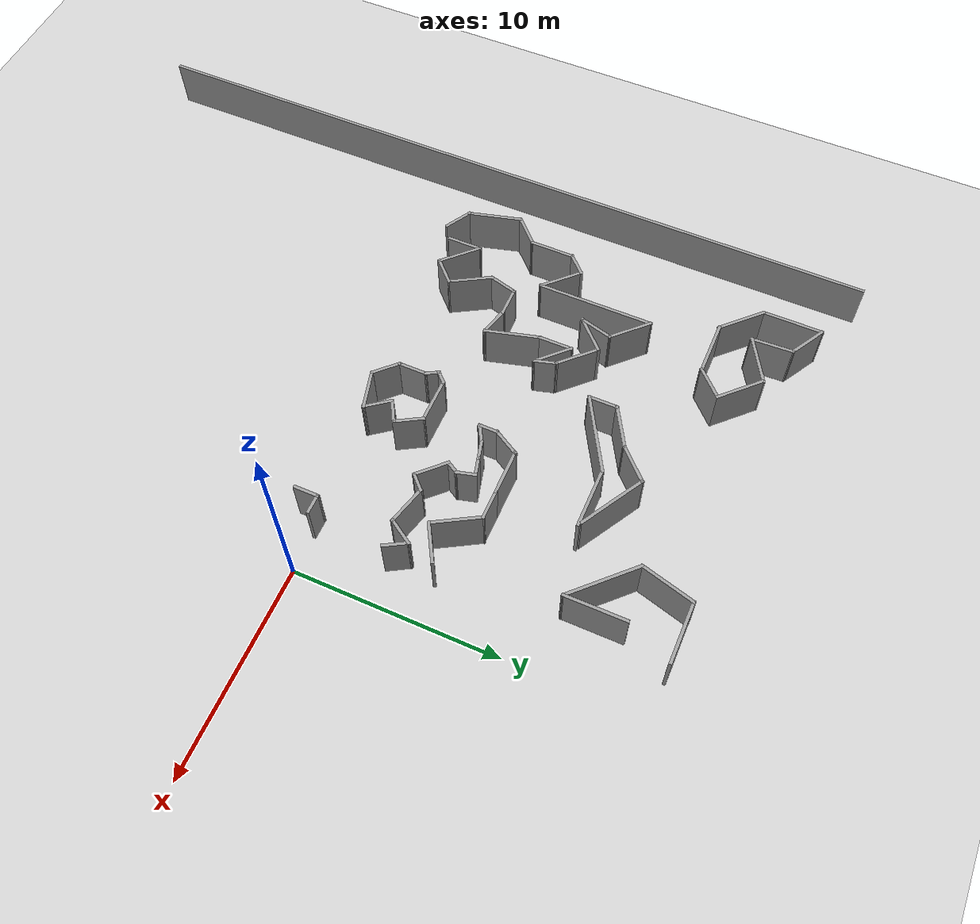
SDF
<sdf version="1.6">
 <world name="default">
  <model name="ground_plane">
   <static>1</static>
   <link name="link">
    <collision name="collision">
     <geometry><plane><normal>0 0 1</normal><size>100 100</size></plane></geometry>
     <surface><friction><ode><mu>100</mu><mu2>50</mu2></ode></friction></surface>
    </collision>
    <visual name="visual">
     <cast_shadows>0</cast_shadows>
     <geometry><plane><normal>0 0 1</normal><size>100 100</size></plane></geometry>
     <material>
      <script><uri>file://media/materials/scripts/gazebo.material</uri><name>Gazebo/Grey</name></script>
     </material>
    </visual>
   </link>
  </model>
  <model name="square_1">
   <pose>0.009703 -0.009719 0 0 -0 0</pose>
   <link name="Wall_105">
    <collision name="Wall_105_Collision">
     <geometry><box><size>3.5 0.15 2.5</size></box></geometry>
     <pose>0 0 1.25 0 -0 0</pose>
    </collision>
    <visual name="Wall_105_Visual">
     <pose>0 0 1.25 0 -0 0</pose>
     <geometry><box><size>3.5 0.15 2.5</size></box></geometry>
     <material>
      <script><uri>file://media/materials/scripts/gazebo.material</uri><name>Gazebo/Grey</name></script>
      <ambient>1 1 1 1</ambient>
     </material>
     <meta><layer>0</layer></meta>
    </visual>
    <pose>-7.60368 11.9241 0 0 -0 2.61799</pose>
   </link>
   <link name="Wall_106">
    <collision name="Wall_106_Collision">
     <geometry><box><size>2 0.15 2.5</size></box></geometry>
     <pose>0 0 1.25 0 -0 0</pose>
    </collision>
    <visual name="Wall_106_Visual">
     <pose>0 0 1.25 0 -0 0</pose>
     <geometry><box><size>2 0.15 2.5</size></box></geometry>
     <material>
      <script><uri>file://media/materials/scripts/gazebo.material</uri><name>Gazebo/Grey</name></script>
      <ambient>1 1 1 1</ambient>
     </material>
     <meta><layer>0</layer></meta>
    </visual>
    <pose>-9.70835 12.1075 0 0 0 -2.35619</pose>
   </link>
   <link name="Wall_107">
    <collision name="Wall_107_Collision">
     <geometry><box><size>2.25 0.15 2.5</size></box></geometry>
     <pose>0 0 1.25 0 -0 0</pose>
    </collision>
    <visual name="Wall_107_Visual">
     <pose>0 0 1.25 0 -0 0</pose>
     <geometry><box><size>2.25 0.15 2.5</size></box></geometry>
     <material>
      <script><uri>file://media/materials/scripts/gazebo.material</uri><name>Gazebo/Grey</name></script>
      <ambient>1 1 1 1</ambient>
     </material>
     <meta><layer>0</layer></meta>
    </visual>
    <pose>-11.2718 10.9285 0 0 0 -2.61799</pose>
   </link>
   <link name="Wall_108">
    <collision name="Wall_108_Collision">
     <geometry><box><size>1.5 0.15 2.5</size></box></geometry>
     <pose>0 0 1.25 0 -0 0</pose>
    </collision>
    <visual name="Wall_108_Visual">
     <pose>0 0 1.25 0 -0 0</pose>
     <geometry><box><size>1.5 0.15 2.5</size></box></geometry>
     <material>
      <script><uri>file://media/materials/scripts/gazebo.material</uri><name>Gazebo/Grey</name></script>
      <ambient>1 1 1 1</ambient>
     </material>
     <meta><layer>0</layer></meta>
    </visual>
    <pose>-12.1811 9.72845 0 0 0 -1.5708</pose>
   </link>
   <link name="Wall_109">
    <collision name="Wall_109_Collision">
     <geometry><box><size>4 0.15 2.5</size></box></geometry>
     <pose>0 0 1.25 0 -0 0</pose>
    </collision>
    <visual name="Wall_109_Visual">
     <pose>0 0 1.25 0 -0 0</pose>
     <geometry><box><size>4 0.15 2.5</size></box></geometry>
     <material>
      <script><uri>file://media/materials/scripts/gazebo.material</uri><name>Gazebo/Grey</name></script>
      <ambient>1 1 1 1</ambient>
     </material>
     <meta><layer>0</layer></meta>
    </visual>
    <pose>-10.514 10.016 0 0 -0 0.523599</pose>
   </link>
   <link name="Wall_110">
    <collision name="Wall_110_Collision">
     <geometry><box><size>3 0.15 2.5</size></box></geometry>
     <pose>0 0 1.25 0 -0 0</pose>
    </collision>
    <visual name="Wall_110_Visual">
     <pose>0 0 1.25 0 -0 0</pose>
     <geometry><box><size>3 0.15 2.5</size></box></geometry>
     <material>
      <script><uri>file://media/materials/scripts/gazebo.material</uri><name>Gazebo/Grey</name></script>
      <ambient>1 1 1 1</ambient>
     </material>
     <meta><layer>0</layer></meta>
    </visual>
    <pose>-7.42188 10.9785 0 0 -0 0</pose>
   </link>
   <link name="Wall_182">
    <collision name="Wall_182_Collision">
     <geometry><box><size>2 0.15 2.5</size></box></geometry>
     <pose>0 0 1.25 0 -0 0</pose>
    </collision>
    <visual name="Wall_182_Visual">
     <pose>0 0 1.25 0 -0 0</pose>
     <geometry><box><size>2 0.15 2.5</size></box></geometry>
     <material>
      <script><uri>file://media/materials/scripts/gazebo.material</uri><name>Gazebo/Grey</name></script>
      <ambient>1 1 1 1</ambient>
     </material>
     <meta><layer>0</layer></meta>
    </visual>
    <pose>-13.6598 6.6534 0 0 -0 2.35619</pose>
   </link>
   <link name="Wall_183">
    <collision name="Wall_183_Collision">
     <geometry><box><size>1.75 0.15 2.5</size></box></geometry>
     <pose>0 0 1.25 0 -0 0</pose>
    </collision>
    <visual name="Wall_183_Visual">
     <pose>0 0 1.25 0 -0 0</pose>
     <geometry><box><size>1.75 0.15 2.5</size></box></geometry>
     <material>
      <script><uri>file://media/materials/scripts/gazebo.material</uri><name>Gazebo/Grey</name></script>
      <ambient>1 1 1 1</ambient>
     </material>
     <meta><layer>0</layer></meta>
    </visual>
    <pose>-14.3138 6.50747 0 0 0 -1.5708</pose>
   </link>
   <link name="Wall_184">
    <collision name="Wall_184_Collision">
     <geometry><box><size>2.75 0.15 2.5</size></box></geometry>
     <pose>0 0 1.25 0 -0 0</pose>
    </collision>
    <visual name="Wall_184_Visual">
     <pose>0 0 1.25 0 -0 0</pose>
     <geometry><box><size>2.75 0.15 2.5</size></box></geometry>
     <material>
      <script><uri>file://media/materials/scripts/gazebo.material</uri><name>Gazebo/Grey</name></script>
      <ambient>1 1 1 1</ambient>
     </material>
     <meta><layer>0</layer></meta>
    </visual>
    <pose>-13.9774 4.45177 0 0 0 -1.309</pose>
   </link>
   <link name="Wall_185">
    <collision name="Wall_185_Collision">
     <geometry><box><size>1.5 0.15 2.5</size></box></geometry>
     <pose>0 0 1.25 0 -0 0</pose>
    </collision>
    <visual name="Wall_185_Visual">
     <pose>0 0 1.25 0 -0 0</pose>
     <geometry><box><size>1.5 0.15 2.5</size></box></geometry>
     <material>
      <script><uri>file://media/materials/scripts/gazebo.material</uri><name>Gazebo/Grey</name></script>
      <ambient>1 1 1 1</ambient>
     </material>
     <meta><layer>0</layer></meta>
    </visual>
    <pose>-14.2929 3.37077 0 0 -0 2.87979</pose>
   </link>
   <link name="Wall_186">
    <collision name="Wall_186_Collision">
     <geometry><box><size>1.5 0.15 2.5</size></box></geometry>
     <pose>0 0 1.25 0 -0 0</pose>
    </collision>
    <visual name="Wall_186_Visual">
     <pose>0 0 1.25 0 -0 0</pose>
     <geometry><box><size>1.5 0.15 2.5</size></box></geometry>
     <material>
      <script><uri>file://media/materials/scripts/gazebo.material</uri><name>Gazebo/Grey</name></script>
      <ambient>1 1 1 1</ambient>
     </material>
     <meta><layer>0</layer></meta>
    </visual>
    <pose>-15.6199 3.54547 0 0 -0 3.14159</pose>
   </link>
   <link name="Wall_187">
    <collision name="Wall_187_Collision">
     <geometry><box><size>1.5 0.15 2.5</size></box></geometry>
     <pose>0 0 1.25 0 -0 0</pose>
    </collision>
    <visual name="Wall_187_Visual">
     <pose>0 0 1.25 0 -0 0</pose>
     <geometry><box><size>1.5 0.15 2.5</size></box></geometry>
     <material>
      <script><uri>file://media/materials/scripts/gazebo.material</uri><name>Gazebo/Grey</name></script>
      <ambient>1 1 1 1</ambient>
     </material>
     <meta><layer>0</layer></meta>
    </visual>
    <pose>-16.4696 2.89347 0 0 0 -1.8326</pose>
   </link>
   <link name="Wall_188">
    <collision name="Wall_188_Collision">
     <geometry><box><size>2.25 0.15 2.5</size></box></geometry>
     <pose>0 0 1.25 0 -0 0</pose>
    </collision>
    <visual name="Wall_188_Visual">
     <pose>0 0 1.25 0 -0 0</pose>
     <geometry><box><size>2.25 0.15 2.5</size></box></geometry>
     <material>
      <script><uri>file://media/materials/scripts/gazebo.material</uri><name>Gazebo/Grey</name></script>
      <ambient>1 1 1 1</ambient>
     </material>
     <meta><layer>0</layer></meta>
    </visual>
    <pose>-16.1193 1.33214 0 0 0 -1.0472</pose>
   </link>
   <link name="Wall_189">
    <collision name="Wall_189_Collision">
     <geometry><box><size>1.5 0.15 2.5</size></box></geometry>
     <pose>0 0 1.25 0 -0 0</pose>
    </collision>
    <visual name="Wall_189_Visual">
     <pose>0 0 1.25 0 -0 0</pose>
     <geometry><box><size>1.5 0.15 2.5</size></box></geometry>
     <material>
      <script><uri>file://media/materials/scripts/gazebo.material</uri><name>Gazebo/Grey</name></script>
      <ambient>1 1 1 1</ambient>
     </material>
     <meta><layer>0</layer></meta>
    </visual>
    <pose>-16.0716 -0.054481 0 0 0 -2.35619</pose>
   </link>
   <link name="Wall_190">
    <collision name="Wall_190_Collision">
     <geometry><box><size>2.25 0.15 2.5</size></box></geometry>
     <pose>0 0 1.25 0 -0 0</pose>
    </collision>
    <visual name="Wall_190_Visual">
     <pose>0 0 1.25 0 -0 0</pose>
     <geometry><box><size>2.25 0.15 2.5</size></box></geometry>
     <material>
      <script><uri>file://media/materials/scripts/gazebo.material</uri><name>Gazebo/Grey</name></script>
      <ambient>1 1 1 1</ambient>
     </material>
     <meta><layer>0</layer></meta>
    </visual>
    <pose>-17.2914 0.210684 0 0 -0 2.35619</pose>
   </link>
   <link name="Wall_191">
    <collision name="Wall_191_Collision">
     <geometry><box><size>1.75 0.15 2.5</size></box></geometry>
     <pose>0 0 1.25 0 -0 0</pose>
    </collision>
    <visual name="Wall_191_Visual">
     <pose>0 0 1.25 0 -0 0</pose>
     <geometry><box><size>1.75 0.15 2.5</size></box></geometry>
     <material>
      <script><uri>file://media/materials/scripts/gazebo.material</uri><name>Gazebo/Grey</name></script>
      <ambient>1 1 1 1</ambient>
     </material>
     <meta><layer>0</layer></meta>
    </visual>
    <pose>-18.0338 0.153146 0 0 0 -1.5708</pose>
   </link>
   <link name="Wall_194">
    <collision name="Wall_194_Collision">
     <geometry><box><size>1.5 0.15 2.5</size></box></geometry>
     <pose>0 0 1.25 0 -0 0</pose>
    </collision>
    <visual name="Wall_194_Visual">
     <pose>0 0 1.25 0 -0 0</pose>
     <geometry><box><size>1.5 0.15 2.5</size></box></geometry>
     <material>
      <script><uri>file://media/materials/scripts/gazebo.material</uri><name>Gazebo/Grey</name></script>
      <ambient>1 1 1 1</ambient>
     </material>
     <meta><layer>0</layer></meta>
    </visual>
    <pose>-19.2878 -0.774608 0 0 -0 2.61799</pose>
   </link>
   <link name="Wall_195">
    <collision name="Wall_195_Collision">
     <geometry><box><size>2.75 0.15 2.5</size></box></geometry>
     <pose>0 0 1.25 0 -0 0</pose>
    </collision>
    <visual name="Wall_195_Visual">
     <pose>0 0 1.25 0 -0 0</pose>
     <geometry><box><size>2.75 0.15 2.5</size></box></geometry>
     <material>
      <script><uri>file://media/materials/scripts/gazebo.material</uri><name>Gazebo/Grey</name></script>
      <ambient>1 1 1 1</ambient>
     </material>
     <meta><layer>0</layer></meta>
    </visual>
    <pose>-20.2089 0.818596 0 0 -0 1.8326</pose>
   </link>
   <link name="Wall_196">
    <collision name="Wall_196_Collision">
     <geometry><box><size>1.75 0.15 2.5</size></box></geometry>
     <pose>0 0 1.25 0 -0 0</pose>
    </collision>
    <visual name="Wall_196_Visual">
     <pose>0 0 1.25 0 -0 0</pose>
     <geometry><box><size>1.75 0.15 2.5</size></box></geometry>
     <material>
      <script><uri>file://media/materials/scripts/gazebo.material</uri><name>Gazebo/Grey</name></script>
      <ambient>1 1 1 1</ambient>
     </material>
     <meta><layer>0</layer></meta>
    </visual>
    <pose>-19.9796 2.63998 0 0 -0 0.785398</pose>
   </link>
   <link name="Wall_197">
    <collision name="Wall_197_Collision">
     <geometry><box><size>2.25 0.15 2.5</size></box></geometry>
     <pose>0 0 1.25 0 -0 0</pose>
    </collision>
    <visual name="Wall_197_Visual">
     <pose>0 0 1.25 0 -0 0</pose>
     <geometry><box><size>2.25 0.15 2.5</size></box></geometry>
     <material>
      <script><uri>file://media/materials/scripts/gazebo.material</uri><name>Gazebo/Grey</name></script>
      <ambient>1 1 1 1</ambient>
     </material>
     <meta><layer>0</layer></meta>
    </visual>
    <pose>-19.414 4.25567 0 0 -0 1.5708</pose>
   </link>
   <link name="Wall_198">
    <collision name="Wall_198_Collision">
     <geometry><box><size>1.25 0.15 2.5</size></box></geometry>
     <pose>0 0 1.25 0 -0 0</pose>
    </collision>
    <visual name="Wall_198_Visual">
     <pose>0 0 1.25 0 -0 0</pose>
     <geometry><box><size>1.25 0.15 2.5</size></box></geometry>
     <material>
      <script><uri>file://media/materials/scripts/gazebo.material</uri><name>Gazebo/Grey</name></script>
      <ambient>1 1 1 1</ambient>
     </material>
     <meta><layer>0</layer></meta>
    </visual>
    <pose>-19.025 5.69458 0 0 -0 0.785398</pose>
   </link>
   <link name="Wall_199">
    <collision name="Wall_199_Collision">
     <geometry><box><size>2.25 0.15 2.5</size></box></geometry>
     <pose>0 0 1.25 0 -0 0</pose>
    </collision>
    <visual name="Wall_199_Visual">
     <pose>0 0 1.25 0 -0 0</pose>
     <geometry><box><size>2.25 0.15 2.5</size></box></geometry>
     <material>
      <script><uri>file://media/materials/scripts/gazebo.material</uri><name>Gazebo/Grey</name></script>
      <ambient>1 1 1 1</ambient>
     </material>
     <meta><layer>0</layer></meta>
    </visual>
    <pose>-17.8937 5.34103 0 0 0 -0.785398</pose>
   </link>
   <link name="Wall_2">
    <collision name="Wall_2_Collision">
     <geometry><box><size>1 0.15 2.5</size></box></geometry>
     <pose>0 0 1.25 0 -0 0</pose>
    </collision>
    <visual name="Wall_2_Visual">
     <pose>0 0 1.25 0 -0 0</pose>
     <geometry><box><size>1 0.15 2.5</size></box></geometry>
     <material>
      <script><uri>file://media/materials/scripts/gazebo.material</uri><name>Gazebo/Grey</name></script>
      <ambient>1 1 1 1</ambient>
     </material>
     <meta><layer>0</layer></meta>
    </visual>
    <pose>-2.31901 0.089444 0 0 -0 3.14159</pose>
   </link>
   <link name="Wall_200">
    <collision name="Wall_200_Collision">
     <geometry><box><size>5.75 0.15 2.5</size></box></geometry>
     <pose>0 0 1.25 0 -0 0</pose>
    </collision>
    <visual name="Wall_200_Visual">
     <pose>0 0 1.25 0 -0 0</pose>
     <geometry><box><size>5.75 0.15 2.5</size></box></geometry>
     <material>
      <script><uri>file://media/materials/scripts/gazebo.material</uri><name>Gazebo/Grey</name></script>
      <ambient>1 1 1 1</ambient>
     </material>
     <meta><layer>0</layer></meta>
    </visual>
    <pose>-17.1512 7.39856 0 0 -0 1.5708</pose>
   </link>
   <link name="Wall_201">
    <collision name="Wall_201_Collision">
     <geometry><box><size>2.25 0.15 2.5</size></box></geometry>
     <pose>0 0 1.25 0 -0 0</pose>
    </collision>
    <visual name="Wall_201_Visual">
     <pose>0 0 1.25 0 -0 0</pose>
     <geometry><box><size>2.25 0.15 2.5</size></box></geometry>
     <material>
      <script><uri>file://media/materials/scripts/gazebo.material</uri><name>Gazebo/Grey</name></script>
      <ambient>1 1 1 1</ambient>
     </material>
     <meta><layer>0</layer></meta>
    </visual>
    <pose>-16.4088 9.4561 0 0 0 -0.785398</pose>
   </link>
   <link name="Wall_202">
    <collision name="Wall_202_Collision">
     <geometry><box><size>1.75 0.15 2.5</size></box></geometry>
     <pose>0 0 1.25 0 -0 0</pose>
    </collision>
    <visual name="Wall_202_Visual">
     <pose>0 0 1.25 0 -0 0</pose>
     <geometry><box><size>1.75 0.15 2.5</size></box></geometry>
     <material>
      <script><uri>file://media/materials/scripts/gazebo.material</uri><name>Gazebo/Grey</name></script>
      <ambient>1 1 1 1</ambient>
     </material>
     <meta><layer>0</layer></meta>
    </visual>
    <pose>-15.8733 7.9409 0 0 0 -1.8326</pose>
   </link>
   <link name="Wall_203">
    <collision name="Wall_203_Collision">
     <geometry><box><size>2 0.15 2.5</size></box></geometry>
     <pose>0 0 1.25 0 -0 0</pose>
    </collision>
    <visual name="Wall_203_Visual">
     <pose>0 0 1.25 0 -0 0</pose>
     <geometry><box><size>2 0.15 2.5</size></box></geometry>
     <material>
      <script><uri>file://media/materials/scripts/gazebo.material</uri><name>Gazebo/Grey</name></script>
      <ambient>1 1 1 1</ambient>
     </material>
     <meta><layer>0</layer></meta>
    </visual>
    <pose>-15.4263 7.82223 0 0 -0 0.785398</pose>
   </link>
   <link name="Wall_204">
    <collision name="Wall_204_Collision">
     <geometry><box><size>2.25 0.15 2.5</size></box></geometry>
     <pose>0 0 1.25 0 -0 0</pose>
    </collision>
    <visual name="Wall_204_Visual">
     <pose>0 0 1.25 0 -0 0</pose>
     <geometry><box><size>2.25 0.15 2.5</size></box></geometry>
     <material>
      <script><uri>file://media/materials/scripts/gazebo.material</uri><name>Gazebo/Grey</name></script>
      <ambient>1 1 1 1</ambient>
     </material>
     <meta><layer>0</layer></meta>
    </visual>
    <pose>-14.0298 7.73384 0 0 0 -0.785398</pose>
   </link>
   <link name="Wall_205">
    <collision name="Wall_205_Collision">
     <geometry><box><size>1.18126 0.15 2.5</size></box></geometry>
     <pose>0 0 1.25 0 -0 0</pose>
    </collision>
    <visual name="Wall_205_Visual">
     <pose>0 0 1.25 0 -0 0</pose>
     <geometry><box><size>1.18126 0.15 2.5</size></box></geometry>
     <material>
      <script><uri>file://media/materials/scripts/gazebo.material</uri><name>Gazebo/Grey</name></script>
      <ambient>1 1 1 1</ambient>
     </material>
     <meta><layer>0</layer></meta>
    </visual>
    <pose>-13.1465 6.49535 0 0 0 -1.29419</pose>
   </link>
   <link name="Wall_243">
    <collision name="Wall_243_Collision">
     <geometry><box><size>38.25 0.15 2.5</size></box></geometry>
     <pose>0 0 1.25 0 -0 0</pose>
    </collision>
    <visual name="Wall_243_Visual">
     <pose>0 0 1.25 0 -0 0</pose>
     <geometry><box><size>38.25 0.15 2.5</size></box></geometry>
     <material>
      <script><uri>file://media/materials/scripts/gazebo.material</uri><name>Gazebo/Grey</name></script>
      <ambient>1 1 1 1</ambient>
     </material>
     <meta><layer>0</layer></meta>
    </visual>
    <pose>-23.05 -0.124999 0 0 0 -1.5708</pose>
   </link>
   <link name="Wall_248">
    <collision name="Wall_248_Collision">
     <geometry><box><size>2.5 0.15 2.5</size></box></geometry>
     <pose>0 0 1.25 0 -0 0</pose>
    </collision>
    <visual name="Wall_248_Visual">
     <pose>0 0 1.25 0 -0 0</pose>
     <geometry><box><size>2.5 0.15 2.5</size></box></geometry>
     <material>
      <script><uri>file://media/materials/scripts/gazebo.material</uri><name>Gazebo/Grey</name></script>
      <ambient>1 1 1 1</ambient>
     </material>
     <meta><layer>0</layer></meta>
    </visual>
    <pose>-17.2002 15.4765 0 0 -0 0.523599</pose>
   </link>
   <link name="Wall_249">
    <collision name="Wall_249_Collision">
     <geometry><box><size>2.5 0.15 2.5</size></box></geometry>
     <pose>0 0 1.25 0 -0 0</pose>
    </collision>
    <visual name="Wall_249_Visual">
     <pose>0 0 1.25 0 -0 0</pose>
     <geometry><box><size>2.5 0.15 2.5</size></box></geometry>
     <material>
      <script><uri>file://media/materials/scripts/gazebo.material</uri><name>Gazebo/Grey</name></script>
      <ambient>1 1 1 1</ambient>
     </material>
     <meta><layer>0</layer></meta>
    </visual>
    <pose>-15.3518 15.2332 0 0 0 -0.785398</pose>
   </link>
   <link name="Wall_250">
    <collision name="Wall_250_Collision">
     <geometry><box><size>1.75 0.15 2.5</size></box></geometry>
     <pose>0 0 1.25 0 -0 0</pose>
    </collision>
    <visual name="Wall_250_Visual">
     <pose>0 0 1.25 0 -0 0</pose>
     <geometry><box><size>1.75 0.15 2.5</size></box></geometry>
     <material>
      <script><uri>file://media/materials/scripts/gazebo.material</uri><name>Gazebo/Grey</name></script>
      <ambient>1 1 1 1</ambient>
     </material>
     <meta><layer>0</layer></meta>
    </visual>
    <pose>-15.0866 13.8366 0 0 0 -2.35619</pose>
   </link>
   <link name="Wall_251">
    <collision name="Wall_251_Collision">
     <geometry><box><size>2.75 0.15 2.5</size></box></geometry>
     <pose>0 0 1.25 0 -0 0</pose>
    </collision>
    <visual name="Wall_251_Visual">
     <pose>0 0 1.25 0 -0 0</pose>
     <geometry><box><size>2.75 0.15 2.5</size></box></geometry>
     <material>
      <script><uri>file://media/materials/scripts/gazebo.material</uri><name>Gazebo/Grey</name></script>
      <ambient>1 1 1 1</ambient>
     </material>
     <meta><layer>0</layer></meta>
    </visual>
    <pose>-16.9523 13.271 0 0 -0 3.14159</pose>
   </link>
   <link name="Wall_252">
    <collision name="Wall_252_Collision">
     <geometry><box><size>2.5 0.15 2.5</size></box></geometry>
     <pose>0 0 1.25 0 -0 0</pose>
    </collision>
    <visual name="Wall_252_Visual">
     <pose>0 0 1.25 0 -0 0</pose>
     <geometry><box><size>2.5 0.15 2.5</size></box></geometry>
     <material>
      <script><uri>file://media/materials/scripts/gazebo.material</uri><name>Gazebo/Grey</name></script>
      <ambient>1 1 1 1</ambient>
     </material>
     <meta><layer>0</layer></meta>
    </visual>
    <pose>-19.0831 14.1018 0 0 -0 2.35619</pose>
   </link>
   <link name="Wall_253">
    <collision name="Wall_253_Collision">
     <geometry><box><size>3 0.15 2.5</size></box></geometry>
     <pose>0 0 1.25 0 -0 0</pose>
    </collision>
    <visual name="Wall_253_Visual">
     <pose>0 0 1.25 0 -0 0</pose>
     <geometry><box><size>3 0.15 2.5</size></box></geometry>
     <material>
      <script><uri>file://media/materials/scripts/gazebo.material</uri><name>Gazebo/Grey</name></script>
      <ambient>1 1 1 1</ambient>
     </material>
     <meta><layer>0</layer></meta>
    </visual>
    <pose>-19.914 16.3577 0 0 -0 1.5708</pose>
   </link>
   <link name="Wall_254">
    <collision name="Wall_254_Collision">
     <geometry><box><size>2 0.15 2.5</size></box></geometry>
     <pose>0 0 1.25 0 -0 0</pose>
    </collision>
    <visual name="Wall_254_Visual">
     <pose>0 0 1.25 0 -0 0</pose>
     <geometry><box><size>2 0.15 2.5</size></box></geometry>
     <material>
      <script><uri>file://media/materials/scripts/gazebo.material</uri><name>Gazebo/Grey</name></script>
      <ambient>1 1 1 1</ambient>
     </material>
     <meta><layer>0</layer></meta>
    </visual>
    <pose>-19.1129 17.3202 0 0 0 -0.523599</pose>
   </link>
   <link name="Wall_255">
    <collision name="Wall_255_Collision">
     <geometry><box><size>2.12087 0.15 2.5</size></box></geometry>
     <pose>0 0 1.25 0 -0 0</pose>
    </collision>
    <visual name="Wall_255_Visual">
     <pose>0 0 1.25 0 -0 0</pose>
     <geometry><box><size>2.12087 0.15 2.5</size></box></geometry>
     <material>
      <script><uri>file://media/materials/scripts/gazebo.material</uri><name>Gazebo/Grey</name></script>
      <ambient>1 1 1 1</ambient>
     </material>
     <meta><layer>0</layer></meta>
    </visual>
    <pose>-18.2648 15.8733 0 0 0 -1.52305</pose>
   </link>
   <link name="Wall_3">
    <collision name="Wall_3_Collision">
     <geometry><box><size>1.25 0.15 2.5</size></box></geometry>
     <pose>0 0 1.25 0 -0 0</pose>
    </collision>
    <visual name="Wall_3_Visual">
     <pose>0 0 1.25 0 -0 0</pose>
     <geometry><box><size>1.25 0.15 2.5</size></box></geometry>
     <material>
      <script><uri>file://media/materials/scripts/gazebo.material</uri><name>Gazebo/Grey</name></script>
      <ambient>1 1 1 1</ambient>
     </material>
     <meta><layer>0</layer></meta>
    </visual>
    <pose>-2.74401 -0.460556 0 0 0 -1.5708</pose>
   </link>
   <link name="Wall_43">
    <collision name="Wall_43_Collision">
     <geometry><box><size>2 0.15 2.5</size></box></geometry>
     <pose>0 0 1.25 0 -0 0</pose>
    </collision>
    <visual name="Wall_43_Visual">
     <pose>0 0 1.25 0 -0 0</pose>
     <geometry><box><size>2 0.15 2.5</size></box></geometry>
     <material>
      <script><uri>file://media/materials/scripts/gazebo.material</uri><name>Gazebo/Grey</name></script>
      <ambient>1 1 1 1</ambient>
     </material>
     <meta><layer>0</layer></meta>
    </visual>
    <pose>-3.88782 3.84306 0 0 -0 2.87979</pose>
   </link>
   <link name="Wall_44">
    <collision name="Wall_44_Collision">
     <geometry><box><size>1 0.15 2.5</size></box></geometry>
     <pose>0 0 1.25 0 -0 0</pose>
    </collision>
    <visual name="Wall_44_Visual">
     <pose>0 0 1.25 0 -0 0</pose>
     <geometry><box><size>1 0.15 2.5</size></box></geometry>
     <material>
      <script><uri>file://media/materials/scripts/gazebo.material</uri><name>Gazebo/Grey</name></script>
      <ambient>1 1 1 1</ambient>
     </material>
     <meta><layer>0</layer></meta>
    </visual>
    <pose>-5.08183 3.78195 0 0 0 -2.35619</pose>
   </link>
   <link name="Wall_45">
    <collision name="Wall_45_Collision">
     <geometry><box><size>1.75 0.15 2.5</size></box></geometry>
     <pose>0 0 1.25 0 -0 0</pose>
    </collision>
    <visual name="Wall_45_Visual">
     <pose>0 0 1.25 0 -0 0</pose>
     <geometry><box><size>1.75 0.15 2.5</size></box></geometry>
     <material>
      <script><uri>file://media/materials/scripts/gazebo.material</uri><name>Gazebo/Grey</name></script>
      <ambient>1 1 1 1</ambient>
     </material>
     <meta><layer>0</layer></meta>
    </visual>
    <pose>-5.94803 4.04711 0 0 -0 2.35619</pose>
   </link>
   <link name="Wall_46">
    <collision name="Wall_46_Collision">
     <geometry><box><size>0.75 0.15 2.5</size></box></geometry>
     <pose>0 0 1.25 0 -0 0</pose>
    </collision>
    <visual name="Wall_46_Visual">
     <pose>0 0 1.25 0 -0 0</pose>
     <geometry><box><size>0.75 0.15 2.5</size></box></geometry>
     <material>
      <script><uri>file://media/materials/scripts/gazebo.material</uri><name>Gazebo/Grey</name></script>
      <ambient>1 1 1 1</ambient>
     </material>
     <meta><layer>0</layer></meta>
    </visual>
    <pose>-6.36372 4.87261 0 0 -0 1.0472</pose>
   </link>
   <link name="Wall_47">
    <collision name="Wall_47_Collision">
     <geometry><box><size>1 0.15 2.5</size></box></geometry>
     <pose>0 0 1.25 0 -0 0</pose>
    </collision>
    <visual name="Wall_47_Visual">
     <pose>0 0 1.25 0 -0 0</pose>
     <geometry><box><size>1 0.15 2.5</size></box></geometry>
     <material>
      <script><uri>file://media/materials/scripts/gazebo.material</uri><name>Gazebo/Grey</name></script>
      <ambient>1 1 1 1</ambient>
     </material>
     <meta><layer>0</layer></meta>
    </visual>
    <pose>-6.32371 5.54293 0 0 -0 1.8326</pose>
   </link>
   <link name="Wall_48">
    <collision name="Wall_48_Collision">
     <geometry><box><size>1 0.15 2.5</size></box></geometry>
     <pose>0 0 1.25 0 -0 0</pose>
    </collision>
    <visual name="Wall_48_Visual">
     <pose>0 0 1.25 0 -0 0</pose>
     <geometry><box><size>1 0.15 2.5</size></box></geometry>
     <material>
      <script><uri>file://media/materials/scripts/gazebo.material</uri><name>Gazebo/Grey</name></script>
      <ambient>1 1 1 1</ambient>
     </material>
     <meta><layer>0</layer></meta>
    </visual>
    <pose>-6.84423 5.84345 0 0 0 -2.87979</pose>
   </link>
   <link name="Wall_49">
    <collision name="Wall_49_Collision">
     <geometry><box><size>1 0.15 2.5</size></box></geometry>
     <pose>0 0 1.25 0 -0 0</pose>
    </collision>
    <visual name="Wall_49_Visual">
     <pose>0 0 1.25 0 -0 0</pose>
     <geometry><box><size>1 0.15 2.5</size></box></geometry>
     <material>
      <script><uri>file://media/materials/scripts/gazebo.material</uri><name>Gazebo/Grey</name></script>
      <ambient>1 1 1 1</ambient>
     </material>
     <meta><layer>0</layer></meta>
    </visual>
    <pose>-7.66527 5.62346 0 0 0 -2.87979</pose>
   </link>
   <link name="Wall_50">
    <collision name="Wall_50_Collision">
     <geometry><box><size>1 0.15 2.5</size></box></geometry>
     <pose>0 0 1.25 0 -0 0</pose>
    </collision>
    <visual name="Wall_50_Visual">
     <pose>0 0 1.25 0 -0 0</pose>
     <geometry><box><size>1 0.15 2.5</size></box></geometry>
     <material>
      <script><uri>file://media/materials/scripts/gazebo.material</uri><name>Gazebo/Grey</name></script>
      <ambient>1 1 1 1</ambient>
     </material>
     <meta><layer>0</layer></meta>
    </visual>
    <pose>-8.44385 5.30096 0 0 0 -2.61799</pose>
   </link>
   <link name="Wall_51">
    <collision name="Wall_51_Collision">
     <geometry><box><size>1 0.15 2.5</size></box></geometry>
     <pose>0 0 1.25 0 -0 0</pose>
    </collision>
    <visual name="Wall_51_Visual">
     <pose>0 0 1.25 0 -0 0</pose>
     <geometry><box><size>1 0.15 2.5</size></box></geometry>
     <material>
      <script><uri>file://media/materials/scripts/gazebo.material</uri><name>Gazebo/Grey</name></script>
      <ambient>1 1 1 1</ambient>
     </material>
     <meta><layer>0</layer></meta>
    </visual>
    <pose>-8.81191 5.51346 0 0 -0 1.5708</pose>
   </link>
   <link name="Wall_52">
    <collision name="Wall_52_Collision">
     <geometry><box><size>1.5 0.15 2.5</size></box></geometry>
     <pose>0 0 1.25 0 -0 0</pose>
    </collision>
    <visual name="Wall_52_Visual">
     <pose>0 0 1.25 0 -0 0</pose>
     <geometry><box><size>1.5 0.15 2.5</size></box></geometry>
     <material>
      <script><uri>file://media/materials/scripts/gazebo.material</uri><name>Gazebo/Grey</name></script>
      <ambient>1 1 1 1</ambient>
     </material>
     <meta><layer>0</layer></meta>
    </visual>
    <pose>-8.47441 6.52303 0 0 -0 1.0472</pose>
   </link>
   <link name="Wall_53">
    <collision name="Wall_53_Collision">
     <geometry><box><size>2.25 0.15 2.5</size></box></geometry>
     <pose>0 0 1.25 0 -0 0</pose>
    </collision>
    <visual name="Wall_53_Visual">
     <pose>0 0 1.25 0 -0 0</pose>
     <geometry><box><size>2.25 0.15 2.5</size></box></geometry>
     <material>
      <script><uri>file://media/materials/scripts/gazebo.material</uri><name>Gazebo/Grey</name></script>
      <ambient>1 1 1 1</ambient>
     </material>
     <meta><layer>0</layer></meta>
    </visual>
    <pose>-7.08691 7.10759 0 0 -0 0</pose>
   </link>
   <link name="Wall_54">
    <collision name="Wall_54_Collision">
     <geometry><box><size>1.5 0.15 2.5</size></box></geometry>
     <pose>0 0 1.25 0 -0 0</pose>
    </collision>
    <visual name="Wall_54_Visual">
     <pose>0 0 1.25 0 -0 0</pose>
     <geometry><box><size>1.5 0.15 2.5</size></box></geometry>
     <material>
      <script><uri>file://media/materials/scripts/gazebo.material</uri><name>Gazebo/Grey</name></script>
      <ambient>1 1 1 1</ambient>
     </material>
     <meta><layer>0</layer></meta>
    </visual>
    <pose>-5.36191 7.10759 0 0 -0 0</pose>
   </link>
   <link name="Wall_55">
    <collision name="Wall_55_Collision">
     <geometry><box><size>2.5 0.15 2.5</size></box></geometry>
     <pose>0 0 1.25 0 -0 0</pose>
    </collision>
    <visual name="Wall_55_Visual">
     <pose>0 0 1.25 0 -0 0</pose>
     <geometry><box><size>2.5 0.15 2.5</size></box></geometry>
     <material>
      <script><uri>file://media/materials/scripts/gazebo.material</uri><name>Gazebo/Grey</name></script>
      <ambient>1 1 1 1</ambient>
     </material>
     <meta><layer>0</layer></meta>
    </visual>
    <pose>-4.09941 6.09001 0 0 0 -1.0472</pose>
   </link>
   <link name="Wall_56">
    <collision name="Wall_56_Collision">
     <geometry><box><size>2 0.15 2.5</size></box></geometry>
     <pose>0 0 1.25 0 -0 0</pose>
    </collision>
    <visual name="Wall_56_Visual">
     <pose>0 0 1.25 0 -0 0</pose>
     <geometry><box><size>2 0.15 2.5</size></box></geometry>
     <material>
      <script><uri>file://media/materials/scripts/gazebo.material</uri><name>Gazebo/Grey</name></script>
      <ambient>1 1 1 1</ambient>
     </material>
     <meta><layer>0</layer></meta>
    </visual>
    <pose>-2.71083 5.53493 0 0 -0 0.523599</pose>
   </link>
   <link name="Wall_60">
    <collision name="Wall_60_Collision">
     <geometry><box><size>1.25 0.15 2.5</size></box></geometry>
     <pose>0 0 1.25 0 -0 0</pose>
    </collision>
    <visual name="Wall_60_Visual">
     <pose>0 0 1.25 0 -0 0</pose>
     <geometry><box><size>1.25 0.15 2.5</size></box></geometry>
     <material>
      <script><uri>file://media/materials/scripts/gazebo.material</uri><name>Gazebo/Grey</name></script>
      <ambient>1 1 1 1</ambient>
     </material>
     <meta><layer>0</layer></meta>
    </visual>
    <pose>-2.02661 4.21297 0 0 -0 2.0944</pose>
   </link>
   <link name="Wall_61">
    <collision name="Wall_61_Collision">
     <geometry><box><size>1.43782 0.15 2.5</size></box></geometry>
     <pose>0 0 1.25 0 -0 0</pose>
    </collision>
    <visual name="Wall_61_Visual">
     <pose>0 0 1.25 0 -0 0</pose>
     <geometry><box><size>1.43782 0.15 2.5</size></box></geometry>
     <material>
      <script><uri>file://media/materials/scripts/gazebo.material</uri><name>Gazebo/Grey</name></script>
      <ambient>1 1 1 1</ambient>
     </material>
     <meta><layer>0</layer></meta>
    </visual>
    <pose>-2.64798 4.14647 0 0 0 -2.13875</pose>
   </link>
   <link name="Wall_63">
    <collision name="Wall_63_Collision">
     <geometry><box><size>1.25 0.15 2.5</size></box></geometry>
     <pose>0 0 1.25 0 -0 0</pose>
    </collision>
    <visual name="Wall_63_Visual">
     <pose>0 0 1.25 0 -0 0</pose>
     <geometry><box><size>1.25 0.15 2.5</size></box></geometry>
     <material>
      <script><uri>file://media/materials/scripts/gazebo.material</uri><name>Gazebo/Grey</name></script>
      <ambient>1 1 1 1</ambient>
     </material>
     <meta><layer>0</layer></meta>
    </visual>
    <pose>-7.92246 1.18518 0 0 -0 0.523599</pose>
   </link>
   <link name="Wall_64">
    <collision name="Wall_64_Collision">
     <geometry><box><size>1.5 0.15 2.5</size></box></geometry>
     <pose>0 0 1.25 0 -0 0</pose>
    </collision>
    <visual name="Wall_64_Visual">
     <pose>0 0 1.25 0 -0 0</pose>
     <geometry><box><size>1.5 0.15 2.5</size></box></geometry>
     <material>
      <script><uri>file://media/materials/scripts/gazebo.material</uri><name>Gazebo/Grey</name></script>
      <ambient>1 1 1 1</ambient>
     </material>
     <meta><layer>0</layer></meta>
    </visual>
    <pose>-7.78364 2.04475 0 0 -0 2.0944</pose>
   </link>
   <link name="Wall_65">
    <collision name="Wall_65_Collision">
     <geometry><box><size>2.25 0.15 2.5</size></box></geometry>
     <pose>0 0 1.25 0 -0 0</pose>
    </collision>
    <visual name="Wall_65_Visual">
     <pose>0 0 1.25 0 -0 0</pose>
     <geometry><box><size>2.25 0.15 2.5</size></box></geometry>
     <material>
      <script><uri>file://media/materials/scripts/gazebo.material</uri><name>Gazebo/Grey</name></script>
      <ambient>1 1 1 1</ambient>
     </material>
     <meta><layer>0</layer></meta>
    </visual>
    <pose>-9.17114 2.62932 0 0 -0 3.14159</pose>
   </link>
   <link name="Wall_66">
    <collision name="Wall_66_Collision">
     <geometry><box><size>0.75 0.15 2.5</size></box></geometry>
     <pose>0 0 1.25 0 -0 0</pose>
    </collision>
    <visual name="Wall_66_Visual">
     <pose>0 0 1.25 0 -0 0</pose>
     <geometry><box><size>0.75 0.15 2.5</size></box></geometry>
     <material>
      <script><uri>file://media/materials/scripts/gazebo.material</uri><name>Gazebo/Grey</name></script>
      <ambient>1 1 1 1</ambient>
     </material>
     <meta><layer>0</layer></meta>
    </visual>
    <pose>-10.4333 2.41719 0 0 0 -2.35619</pose>
   </link>
   <link name="Wall_67">
    <collision name="Wall_67_Collision">
     <geometry><box><size>0.75 0.15 2.5</size></box></geometry>
     <pose>0 0 1.25 0 -0 0</pose>
    </collision>
    <visual name="Wall_67_Visual">
     <pose>0 0 1.25 0 -0 0</pose>
     <geometry><box><size>0.75 0.15 2.5</size></box></geometry>
     <material>
      <script><uri>file://media/materials/scripts/gazebo.material</uri><name>Gazebo/Grey</name></script>
      <ambient>1 1 1 1</ambient>
     </material>
     <meta><layer>0</layer></meta>
    </visual>
    <pose>-10.4954 1.94525 0 0 0 -1.0472</pose>
   </link>
   <link name="Wall_68">
    <collision name="Wall_68_Collision">
     <geometry><box><size>1.5 0.15 2.5</size></box></geometry>
     <pose>0 0 1.25 0 -0 0</pose>
    </collision>
    <visual name="Wall_68_Visual">
     <pose>0 0 1.25 0 -0 0</pose>
     <geometry><box><size>1.5 0.15 2.5</size></box></geometry>
     <material>
      <script><uri>file://media/materials/scripts/gazebo.material</uri><name>Gazebo/Grey</name></script>
      <ambient>1 1 1 1</ambient>
     </material>
     <meta><layer>0</layer></meta>
    </visual>
    <pose>-10.3454 1.01044 0 0 0 -1.5708</pose>
   </link>
   <link name="Wall_69">
    <collision name="Wall_69_Collision">
     <geometry><box><size>1.5 0.15 2.5</size></box></geometry>
     <pose>0 0 1.25 0 -0 0</pose>
    </collision>
    <visual name="Wall_69_Visual">
     <pose>0 0 1.25 0 -0 0</pose>
     <geometry><box><size>1.5 0.15 2.5</size></box></geometry>
     <material>
      <script><uri>file://media/materials/scripts/gazebo.material</uri><name>Gazebo/Grey</name></script>
      <ambient>1 1 1 1</ambient>
     </material>
     <meta><layer>0</layer></meta>
    </visual>
    <pose>-9.86811 -0.141858 0 0 0 -0.785398</pose>
   </link>
   <link name="Wall_70">
    <collision name="Wall_70_Collision">
     <geometry><box><size>2 0.15 2.5</size></box></geometry>
     <pose>0 0 1.25 0 -0 0</pose>
    </collision>
    <visual name="Wall_70_Visual">
     <pose>0 0 1.25 0 -0 0</pose>
     <geometry><box><size>2 0.15 2.5</size></box></geometry>
     <material>
      <script><uri>file://media/materials/scripts/gazebo.material</uri><name>Gazebo/Grey</name></script>
      <ambient>1 1 1 1</ambient>
     </material>
     <meta><layer>0</layer></meta>
    </visual>
    <pose>-8.49733 -0.379747 0 0 -0 0.261799</pose>
   </link>
   <link name="Wall_71">
    <collision name="Wall_71_Collision">
     <geometry><box><size>1.46738 0.15 2.5</size></box></geometry>
     <pose>0 0 1.25 0 -0 0</pose>
    </collision>
    <visual name="Wall_71_Visual">
     <pose>0 0 1.25 0 -0 0</pose>
     <geometry><box><size>1.46738 0.15 2.5</size></box></geometry>
     <material>
      <script><uri>file://media/materials/scripts/gazebo.material</uri><name>Gazebo/Grey</name></script>
      <ambient>1 1 1 1</ambient>
     </material>
     <meta><layer>0</layer></meta>
    </visual>
    <pose>-8.00131 0.384923 0 0 -0 2.21856</pose>
   </link>
   <link name="Wall_95">
    <collision name="Wall_95_Collision">
     <geometry><box><size>3 0.15 2.5</size></box></geometry>
     <pose>0 0 1.25 0 -0 0</pose>
    </collision>
    <visual name="Wall_95_Visual">
     <pose>0 0 1.25 0 -0 0</pose>
     <geometry><box><size>3 0.15 2.5</size></box></geometry>
     <material>
      <script><uri>file://media/materials/scripts/gazebo.material</uri><name>Gazebo/Grey</name></script>
      <ambient>1 1 1 1</ambient>
     </material>
     <meta><layer>0</layer></meta>
    </visual>
    <pose>-2.74701 13.0375 0 0 0 -1.5708</pose>
   </link>
   <link name="Wall_96">
    <collision name="Wall_96_Collision">
     <geometry><box><size>3.75 0.15 2.5</size></box></geometry>
     <pose>0 0 1.25 0 -0 0</pose>
    </collision>
    <visual name="Wall_96_Visual">
     <pose>0 0 1.25 0 -0 0</pose>
     <geometry><box><size>3.75 0.15 2.5</size></box></geometry>
     <material>
      <script><uri>file://media/materials/scripts/gazebo.material</uri><name>Gazebo/Grey</name></script>
      <ambient>1 1 1 1</ambient>
     </material>
     <meta><layer>0</layer></meta>
    </visual>
    <pose>-4.0198 12.8853 0 0 -0 2.35619</pose>
   </link>
   <link name="Wall_97">
    <collision name="Wall_97_Collision">
     <geometry><box><size>2.75 0.15 2.5</size></box></geometry>
     <pose>0 0 1.25 0 -0 0</pose>
    </collision>
    <visual name="Wall_97_Visual">
     <pose>0 0 1.25 0 -0 0</pose>
     <geometry><box><size>2.75 0.15 2.5</size></box></geometry>
     <material>
      <script><uri>file://media/materials/scripts/gazebo.material</uri><name>Gazebo/Grey</name></script>
      <ambient>1 1 1 1</ambient>
     </material>
     <meta><layer>0</layer></meta>
    </visual>
    <pose>-4.95613 15.4138 0 0 -0 1.309</pose>
   </link>
   <link name="Wall_98">
    <collision name="Wall_98_Collision">
     <geometry><box><size>3 0.15 2.5</size></box></geometry>
     <pose>0 0 1.25 0 -0 0</pose>
    </collision>
    <visual name="Wall_98_Visual">
     <pose>0 0 1.25 0 -0 0</pose>
     <geometry><box><size>3 0.15 2.5</size></box></geometry>
     <material>
      <script><uri>file://media/materials/scripts/gazebo.material</uri><name>Gazebo/Grey</name></script>
      <ambient>1 1 1 1</ambient>
     </material>
     <meta><layer>0</layer></meta>
    </visual>
    <pose>-3.19467 16.6695 0 0 -0 0</pose>
   </link>
   <static>1</static>
  </model>
 </world>
</sdf>
